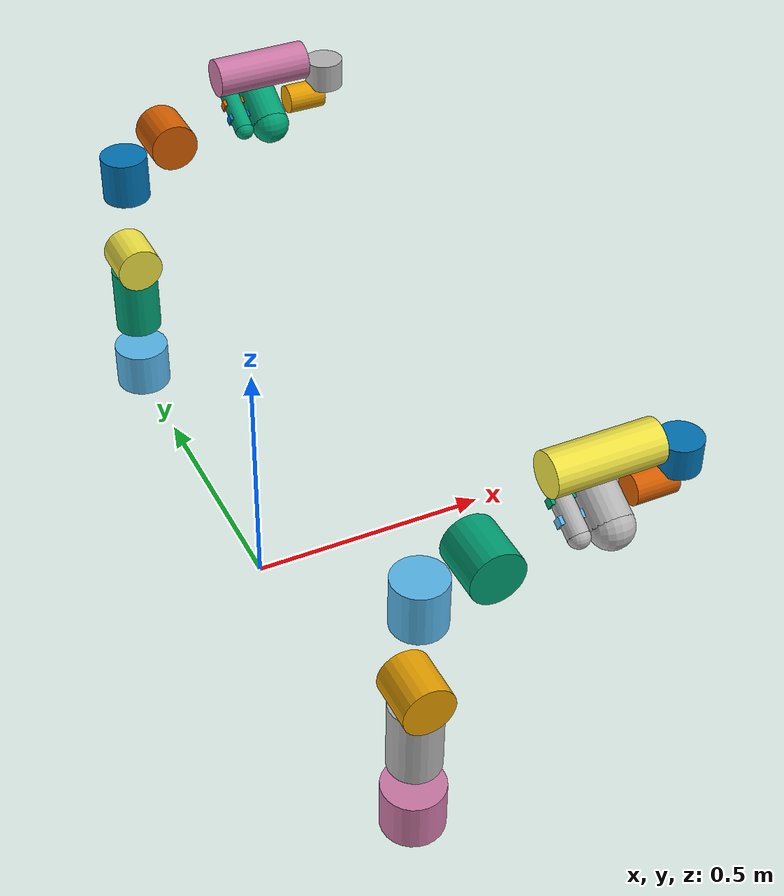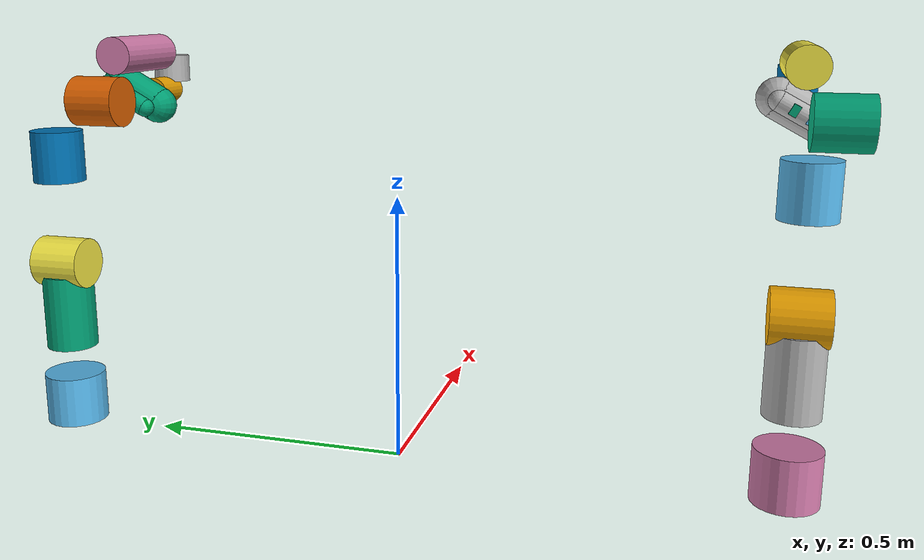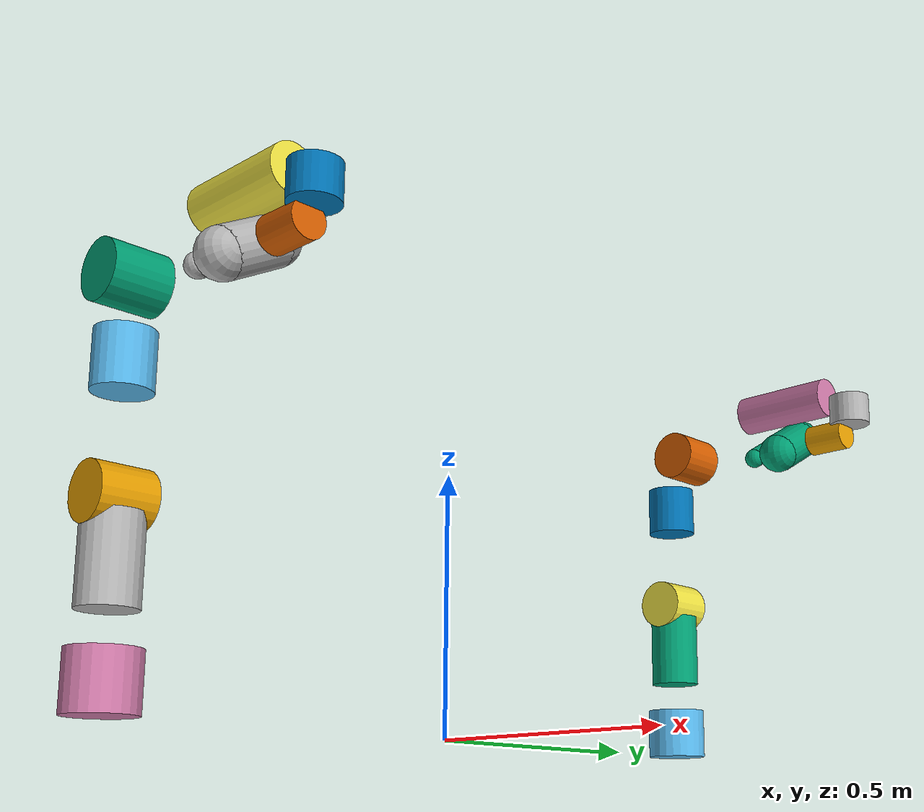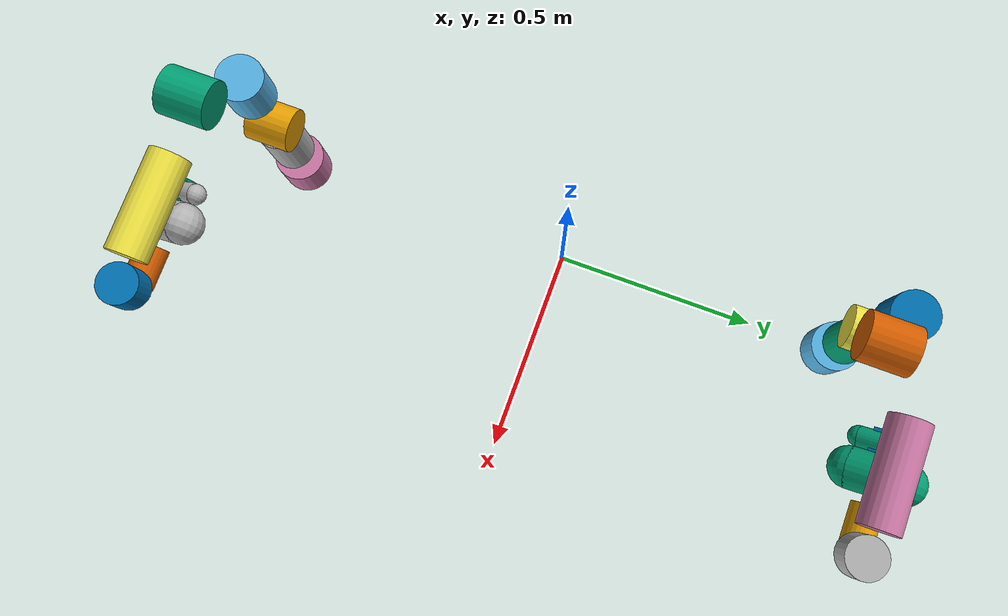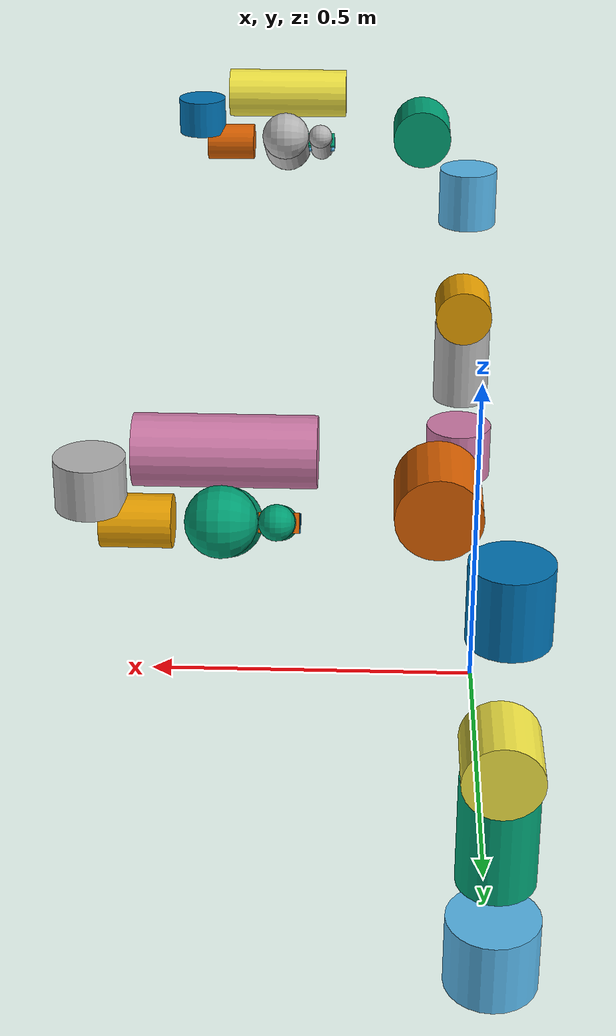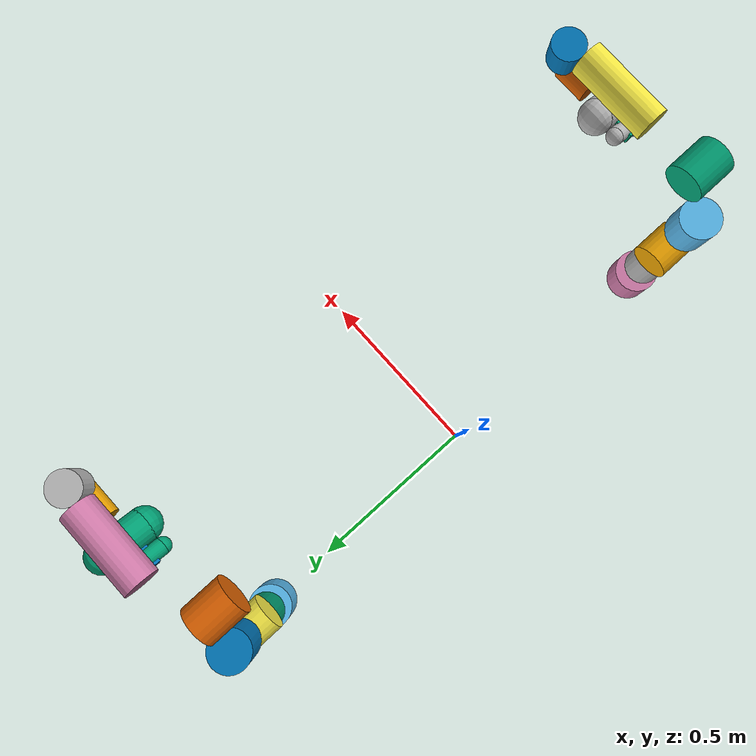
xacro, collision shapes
<?xml version="1.0"?>
<robot xmlns:xacro="http://www.ros.org/wiki/xacro" name="dual_panda">

    <!-- 1. 引入宏定义 -->
    <xacro:include filename="$(find franka_description)/robots/panda_arm.xacro" />
    <xacro:include filename="$(find franka_description)/robots/hand.xacro" />

    <!-- 2. 地基 Link -->
    <link name="base_link" />

    <!-- 定义两臂间距 -->
    <!-- 增大两臂间距，让双臂更舒展 -->
    <xacro:property name="arm_distance" value="0.7" />

    <!-- ==================== 左臂 (Left Arm) ==================== -->
    <!-- safety_distance 必须设为 0，否则简化模型会自碰撞 -->
    <!-- 左臂初始姿态更舒展，手腕旋转角度更自然 -->
    <xacro:panda_arm arm_id="panda_left" connected_to="base_link"  xyz="0 ${arm_distance} 0" rpy="0 0 0" safety_distance="0"/>
    <xacro:hand ns="panda_left" rpy="0 0 -0.5" connected_to="panda_left_link8" safety_distance="0"/>

    <!-- ==================== 右臂 (Right Arm) ==================== -->
    <!-- 右臂初始姿态更舒展，手腕旋转角度更自然 -->
    <xacro:panda_arm arm_id="panda_right" connected_to="base_link" xyz="0 -${arm_distance} 0" rpy="0 0 0" safety_distance="0"/>
    <xacro:hand ns="panda_right" rpy="0 0 -0.5" connected_to="panda_right_link8" safety_distance="0"/>

</robot>

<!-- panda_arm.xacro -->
<robot xmlns:xacro="http://www.ros.org/wiki/xacro" name="panda">
  <xacro:macro name="panda_arm" params="arm_id:='panda' description_pkg:='franka_description' connected_to:='' xyz:='0 0 0' rpy:='0 0 0' safety_distance:=0">

    <!-- 1. 连接到父节点 -->
    <xacro:unless value="${not connected_to}">
      <joint name="${arm_id}_joint_${connected_to}" type="fixed">
        <parent link="${connected_to}"/>
        <child link="${arm_id}_link0"/>
        <origin rpy="${rpy}" xyz="${xyz}"/>
      </joint>
    </xacro:unless>

    <!-- 2. Link 定义：每个 Link 只保留一个极简圆柱体 -->

    <!-- Link 0 (Base) -->
    <link name="${arm_id}_link0">
      <visual>
        <geometry><mesh filename="package://${description_pkg}/meshes/visual/link0.dae"/></geometry>
      </visual>
      <collision>
        <origin xyz="0 0 0.05" rpy="0 0 0"/>
        <geometry><cylinder radius="0.06" length="0.1" /></geometry>
      </collision>
    </link>

    <!-- Joint 1 -->
    <joint name="${arm_id}_joint1" type="revolute">
      <safety_controller k_position="100.0" k_velocity="40.0" soft_lower_limit="-2.8973" soft_upper_limit="2.8973"/>
      <origin rpy="0 0 0" xyz="0 0 0.333"/>
      <parent link="${arm_id}_link0"/>
      <child link="${arm_id}_link1"/>
      <axis xyz="0 0 1"/>
      <limit effort="87" lower="-2.8973" upper="2.8973" velocity="2.1750"/>
    </joint>

    <!-- Link 1 -->
    <link name="${arm_id}_link1">
      <visual>
        <geometry><mesh filename="package://${description_pkg}/meshes/visual/link1.dae"/></geometry>
      </visual>
      <collision>
        <origin xyz="0 0 -0.1" rpy="0 0 0"/>
        <geometry><cylinder radius="0.05" length="0.15" /></geometry>
      </collision>
    </link>

    <!-- Joint 2 -->
    <joint name="${arm_id}_joint2" type="revolute">
      <safety_controller k_position="100.0" k_velocity="40.0" soft_lower_limit="-1.7628" soft_upper_limit="1.7628"/>
      <origin rpy="${-pi/2} 0 0" xyz="0 0 0"/>
      <parent link="${arm_id}_link1"/>
      <child link="${arm_id}_link2"/>
      <axis xyz="0 0 1"/>
      <limit effort="87" lower="-1.7628" upper="1.7628" velocity="2.1750"/>
    </joint>

    <!-- Link 2 -->
    <link name="${arm_id}_link2">
      <visual>
        <geometry><mesh filename="package://${description_pkg}/meshes/visual/link2.dae"/></geometry>
      </visual>
      <collision>
        <origin xyz="0 0 0" rpy="0 0 0"/>
        <geometry><cylinder radius="0.05" length="0.1" /></geometry>
      </collision>
    </link>

    <!-- Joint 3 -->
    <joint name="${arm_id}_joint3" type="revolute">
      <safety_controller k_position="100.0" k_velocity="40.0" soft_lower_limit="-2.8973" soft_upper_limit="2.8973"/>
      <origin rpy="${pi/2} 0 0" xyz="0 -0.316 0"/>
      <parent link="${arm_id}_link2"/>
      <child link="${arm_id}_link3"/>
      <axis xyz="0 0 1"/>
      <limit effort="87" lower="-2.8973" upper="2.8973" velocity="2.1750"/>
    </joint>

    <!-- Link 3 -->
    <link name="${arm_id}_link3">
      <visual>
        <geometry><mesh filename="package://${description_pkg}/meshes/visual/link3.dae"/></geometry>
      </visual>
      <collision>
        <origin xyz="0 0 -0.1" rpy="0 0 0"/>
        <geometry><cylinder radius="0.05" length="0.1" /></geometry>
      </collision>
    </link>

    <!-- Joint 4 -->
    <joint name="${arm_id}_joint4" type="revolute">
      <safety_controller k_position="100.0" k_velocity="40.0" soft_lower_limit="-3.0718" soft_upper_limit="-0.0698"/>
      <origin rpy="${pi/2} 0 0" xyz="0.0825 0 0"/>
      <parent link="${arm_id}_link3"/>
      <child link="${arm_id}_link4"/>
      <axis xyz="0 0 1"/>
      <limit effort="87" lower="-3.0718" upper="-0.0698" velocity="2.1750"/>
    </joint>

    <!-- Link 4 -->
    <link name="${arm_id}_link4">
      <visual>
        <geometry><mesh filename="package://${description_pkg}/meshes/visual/link4.dae"/></geometry>
      </visual>
      <collision>
        <origin xyz="0 0 0.05" rpy="0 0 0"/>
        <geometry><cylinder radius="0.05" length="0.1" /></geometry>
      </collision>
    </link>

    <!-- Joint 5 -->
    <joint name="${arm_id}_joint5" type="revolute">
      <safety_controller k_position="100.0" k_velocity="40.0" soft_lower_limit="-2.8973" soft_upper_limit="2.8973"/>
      <origin rpy="${-pi/2} 0 0" xyz="-0.0825 0.384 0"/>
      <parent link="${arm_id}_link4"/>
      <child link="${arm_id}_link5"/>
      <axis xyz="0 0 1"/>
      <limit effort="12" lower="-2.8973" upper="2.8973" velocity="2.6100"/>
    </joint>

    <!-- Link 5 -->
    <link name="${arm_id}_link5">
      <visual>
        <geometry><mesh filename="package://${description_pkg}/meshes/visual/link5.dae"/></geometry>
      </visual>
      <collision>
        <origin xyz="0 0 -0.15" rpy="0 0 0"/>
        <geometry><cylinder radius="0.04" length="0.2" /></geometry>
      </collision>
    </link>

    <!-- Joint 6 -->
    <joint name="${arm_id}_joint6" type="revolute">
      <safety_controller k_position="100.0" k_velocity="40.0" soft_lower_limit="-0.0175" soft_upper_limit="3.7525"/>
      <origin rpy="${pi/2} 0 0" xyz="0 0 0"/>
      <parent link="${arm_id}_link5"/>
      <child link="${arm_id}_link6"/>
      <axis xyz="0 0 1"/>
      <limit effort="12" lower="-0.0175" upper="3.7525" velocity="2.6100"/>
    </joint>

    <!-- Link 6 -->
    <link name="${arm_id}_link6">
      <visual>
        <geometry><mesh filename="package://${description_pkg}/meshes/visual/link6.dae"/></geometry>
      </visual>
      <collision>
        <origin xyz="0.04 0 0" rpy="0 1.5708 0"/>
        <geometry><cylinder radius="0.04" length="0.06" /></geometry>
      </collision>
    </link>

    <!-- Joint 7 -->
    <joint name="${arm_id}_joint7" type="revolute">
      <safety_controller k_position="100.0" k_velocity="40.0" soft_lower_limit="-2.8973" soft_upper_limit="2.8973"/>
      <origin rpy="${pi/2} 0 0" xyz="0.088 0 0"/>
      <parent link="${arm_id}_link6"/>
      <child link="${arm_id}_link7"/>
      <axis xyz="0 0 1"/>
      <limit effort="12" lower="-2.8973" upper="2.8973" velocity="2.6100"/>
    </joint>

    <!-- Link 7 -->
    <link name="${arm_id}_link7">
      <visual>
        <geometry><mesh filename="package://${description_pkg}/meshes/visual/link7.dae"/></geometry>
      </visual>
      <collision>
        <origin xyz="0 0 0.05" rpy="0 0 0"/>
        <geometry><cylinder radius="0.03" length="0.08" /></geometry>
      </collision>
    </link>

    <!-- Joint 8 (Fixed) -->
    <joint name="${arm_id}_joint8" type="fixed">
      <origin rpy="0 0 0" xyz="0 0 0.107"/>
      <parent link="${arm_id}_link7"/>
      <child link="${arm_id}_link8"/>
    </joint>
    <link name="${arm_id}_link8"/>

  </xacro:macro>
</robot>

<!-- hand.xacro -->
<robot xmlns:xacro="http://www.ros.org/wiki/xacro" name="hand">
  <!-- safety_distance: Minimum safety distance in [m] by which the collision volumes are expanded and which is enforced during robot motions -->
  <xacro:macro name="hand" params="connected_to:='' ns:='' rpy:='0 0 0' xyz:='0 0 0' safety_distance:=0">
    <xacro:unless value="${connected_to == ''}">
      <joint name="${ns}_hand_joint" type="fixed">
        <parent link="${connected_to}"/>
        <child link="${ns}_hand"/>
        <origin xyz="${xyz}" rpy="${rpy}"/>
      </joint>
    </xacro:unless>

    <!-- 手掌部分 (保持原样，这部分使用的是简单的几何体，没问题) -->
    <link name="${ns}_hand">
      <visual>
        <geometry>
          <mesh filename="package://franka_description/meshes/visual/hand.dae"/>
        </geometry>
      </visual>
      <collision>
        <origin xyz="0 0 0.04" rpy="0 ${pi/2} ${pi/2}"/>
        <geometry>
          <cylinder radius="${0.04+safety_distance}" length="0.1"/>
        </geometry>
      </collision>
      <collision>
        <origin xyz="0 -0.05 0.04" rpy="0 0 0"/>
        <geometry>
          <sphere radius="${0.04+safety_distance}"/>
        </geometry>
      </collision>
      <collision>
        <origin xyz="0 0.05 0.04" rpy="0 0 0"/>
        <geometry>
          <sphere radius="${0.04+safety_distance}"/>
        </geometry>
      </collision>
      <collision>
        <origin xyz="0 0 0.1" rpy="0 ${pi/2} ${pi/2}"/>
        <geometry>
          <cylinder radius="${0.02+safety_distance}" length="0.1"/>
        </geometry>
      </collision>
      <collision>
        <origin xyz="0 -0.05 0.1" rpy="0 0 0"/>
        <geometry>
          <sphere radius="${0.02+safety_distance}"/>
        </geometry>
      </collision>
      <collision>
        <origin xyz="0 0.05 0.1" rpy="0 0 0"/>
        <geometry>
          <sphere radius="${0.02+safety_distance}"/>
        </geometry>
      </collision>
    </link>

    <!-- 定义 TCP 坐标系 -->
    <link name="${ns}_hand_tcp"/>
    <joint name="${ns}_hand_tcp_joint" type="fixed">
      <origin xyz="0 0 0.1034" rpy="0 0 0"/>
      <parent link="${ns}_hand"/>
      <child link="${ns}_hand_tcp"/>
    </joint>

    <!-- 关键修复：将手指的 Collision 改为简单的 Box，防止内存溢出 -->

    <!-- 左手指 -->
    <link name="${ns}_leftfinger">
      <visual>
        <geometry>
          <mesh filename="package://franka_description/meshes/visual/finger.dae"/>
        </geometry>
      </visual>
      <!-- 修复：使用 Box 代替 Mesh -->
      <collision>
        <origin xyz="0 0.018 0.04" rpy="0 0 0"/>
        <geometry>
          <box size="0.022 0.015 0.05"/>
        </geometry>
      </collision>
    </link>

    <!-- 右手指 -->
    <link name="${ns}_rightfinger">
      <visual>
        <origin xyz="0 0 0" rpy="0 0 ${pi}"/>
        <geometry>
          <mesh filename="package://franka_description/meshes/visual/finger.dae"/>
        </geometry>
      </visual>
      <!-- 修复：使用 Box 代替 Mesh，注意这里也需要旋转 -->
      <collision>
        <origin xyz="0 -0.018 0.04" rpy="0 0 ${pi}"/>
        <geometry>
           <box size="0.022 0.015 0.05"/>
        </geometry>
      </collision>
    </link>

    <joint name="${ns}_finger_joint1" type="prismatic">
      <parent link="${ns}_hand"/>
      <child link="${ns}_leftfinger"/>
      <origin xyz="0 0 0.0584" rpy="0 0 0"/>
      <axis xyz="0 1 0"/>
      <limit effort="20" lower="0.0" upper="0.04" velocity="0.2"/>
    </joint>
    <joint name="${ns}_finger_joint2" type="prismatic">
      <parent link="${ns}_hand"/>
      <child link="${ns}_rightfinger"/>
      <origin xyz="0 0 0.0584" rpy="0 0 0"/>
      <axis xyz="0 -1 0"/>
      <limit effort="20" lower="0.0" upper="0.04" velocity="0.2"/>
      <mimic joint="${ns}_finger_joint1"/>
    </joint>
  </xacro:macro>
</robot>
